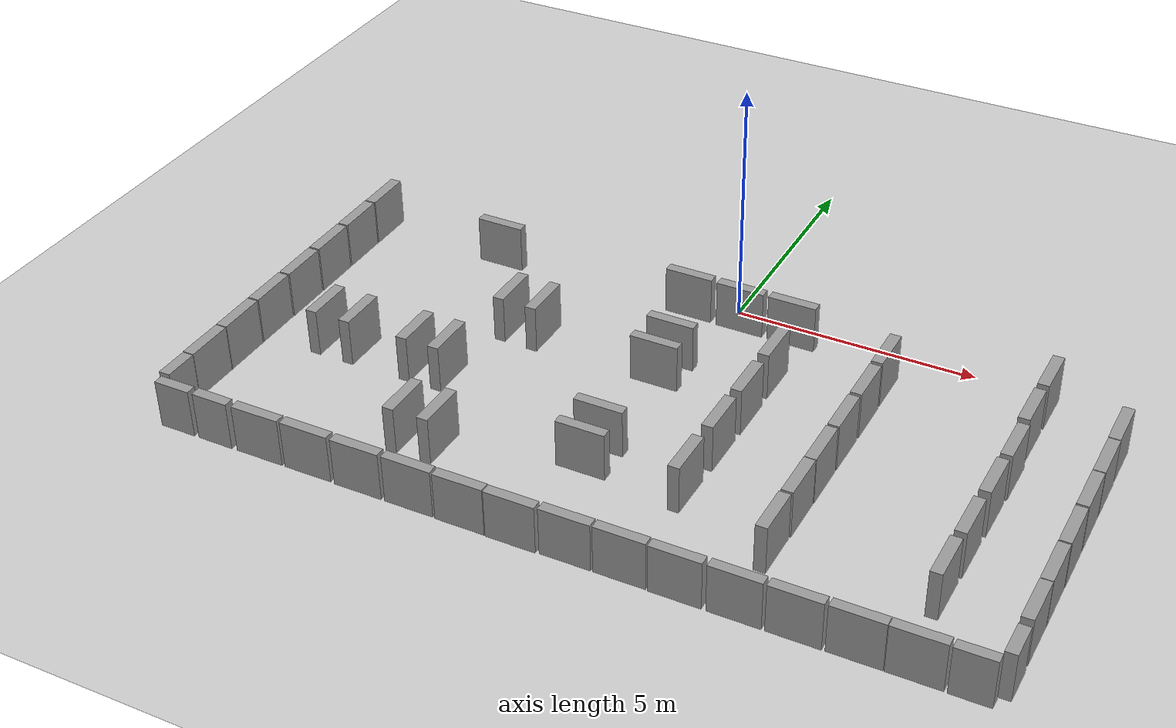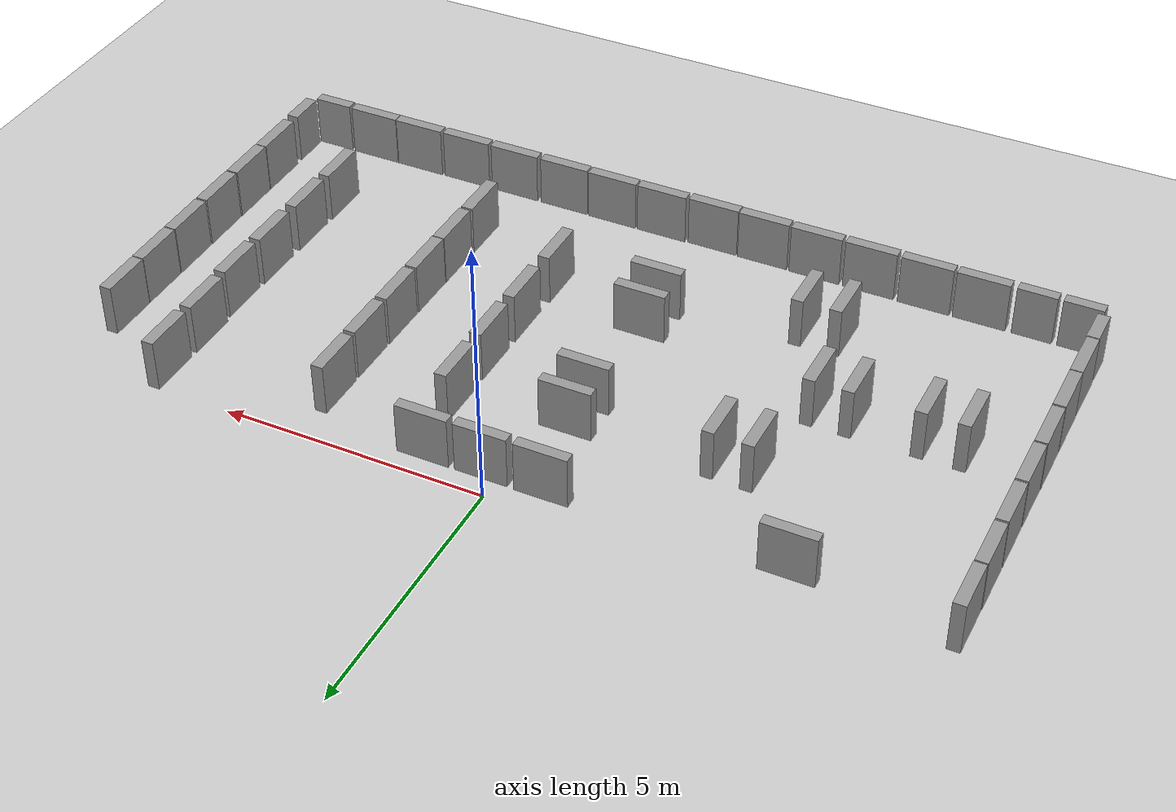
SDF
<sdf version="1.6">
 <world name="default">
  <model name="ground_plane">
   <static>1</static>
   <static>1</static>
   <link name="link">
    <collision name="collision">
     <geometry><plane><normal>0 0 1</normal><size>100 100</size></plane></geometry>
     <surface><friction><ode><mu>100</mu><mu2>50</mu2></ode></friction></surface>
    </collision>
    <visual name="visual">
     <cast_shadows>0</cast_shadows>
     <geometry><plane><normal>0 0 1</normal><size>100 100</size></plane></geometry>
     <material>
      <script><uri>file://media/materials/scripts/gazebo.material</uri><name>Gazebo/Grey</name></script>
     </material>
    </visual>
   </link>
  </model>
  <model name="unit_box_0_clone_8">
   <pose>8.11912 -1.4863 0.5 1e-06 1e-06 0.000127</pose>
   <link name="link">
    <inertial>
     <mass>1</mass>
     <inertia>
      <ixx>0.166667</ixx>
      <ixy>0</ixy>
      <ixz>0</ixz>
      <iyy>0.166667</iyy>
      <iyz>0</iyz>
      <izz>0.166667</izz>
     </inertia>
    </inertial>
    <collision name="collision"><geometry><box><size>0.230819 1 1</size></box></geometry></collision>
    <visual name="visual">
     <geometry><box><size>0.230819 1 1</size></box></geometry>
     <material>
      <script><name>Gazebo/Grey</name><uri>file://media/materials/scripts/gazebo.material</uri></script>
     </material>
    </visual>
   </link>
  </model>
  <model name="unit_box_0_clone_9">
   <pose>8.12548 -2.5042 0.5 1e-06 1e-06 0.000127</pose>
   <link name="link">
    <inertial>
     <mass>1</mass>
     <inertia>
      <ixx>0.166667</ixx>
      <ixy>0</ixy>
      <ixz>0</ixz>
      <iyy>0.166667</iyy>
      <iyz>0</iyz>
      <izz>0.166667</izz>
     </inertia>
    </inertial>
    <collision name="collision"><geometry><box><size>0.230819 1 1</size></box></geometry></collision>
    <visual name="visual">
     <geometry><box><size>0.230819 1 1</size></box></geometry>
     <material>
      <script><name>Gazebo/Grey</name><uri>file://media/materials/scripts/gazebo.material</uri></script>
     </material>
    </visual>
   </link>
  </model>
  <model name="unit_box_0_clone_10">
   <pose>8.12331 -3.52222 0.5 1e-06 1e-06 0.000127</pose>
   <link name="link">
    <inertial>
     <mass>1</mass>
     <inertia>
      <ixx>0.166667</ixx>
      <ixy>0</ixy>
      <ixz>0</ixz>
      <iyy>0.166667</iyy>
      <iyz>0</iyz>
      <izz>0.166667</izz>
     </inertia>
    </inertial>
    <collision name="collision"><geometry><box><size>0.230819 1 1</size></box></geometry></collision>
    <visual name="visual">
     <geometry><box><size>0.230819 1 1</size></box></geometry>
     <material>
      <script><name>Gazebo/Grey</name><uri>file://media/materials/scripts/gazebo.material</uri></script>
     </material>
    </visual>
   </link>
  </model>
  <model name="unit_box_0_clone_11">
   <pose>8.1233 -4.56315 0.5 1e-06 1e-06 0.000127</pose>
   <link name="link">
    <inertial>
     <mass>1</mass>
     <inertia>
      <ixx>0.166667</ixx>
      <ixy>0</ixy>
      <ixz>0</ixz>
      <iyy>0.166667</iyy>
      <iyz>0</iyz>
      <izz>0.166667</izz>
     </inertia>
    </inertial>
    <collision name="collision"><geometry><box><size>0.230819 1 1</size></box></geometry></collision>
    <visual name="visual">
     <geometry><box><size>0.230819 1 1</size></box></geometry>
     <material>
      <script><name>Gazebo/Grey</name><uri>file://media/materials/scripts/gazebo.material</uri></script>
     </material>
    </visual>
   </link>
  </model>
  <model name="unit_box_0_clone_12">
   <pose>8.11815 -5.59377 0.5 1e-06 1e-06 0.000127</pose>
   <link name="link">
    <inertial>
     <mass>1</mass>
     <inertia>
      <ixx>0.166667</ixx>
      <ixy>0</ixy>
      <ixz>0</ixz>
      <iyy>0.166667</iyy>
      <iyz>0</iyz>
      <izz>0.166667</izz>
     </inertia>
    </inertial>
    <collision name="collision"><geometry><box><size>0.230819 1 1</size></box></geometry></collision>
    <visual name="visual">
     <geometry><box><size>0.230819 1 1</size></box></geometry>
     <material>
      <script><name>Gazebo/Grey</name><uri>file://media/materials/scripts/gazebo.material</uri></script>
     </material>
    </visual>
   </link>
  </model>
  <model name="unit_box_0_clone_13">
   <pose>8.11333 -6.60776 0.5 1e-06 1e-06 -0.00535</pose>
   <link name="link">
    <inertial>
     <mass>1</mass>
     <inertia>
      <ixx>0.166667</ixx>
      <ixy>0</ixy>
      <ixz>0</ixz>
      <iyy>0.166667</iyy>
      <iyz>0</iyz>
      <izz>0.166667</izz>
     </inertia>
    </inertial>
    <collision name="collision"><geometry><box><size>0.230819 1 1</size></box></geometry></collision>
    <visual name="visual">
     <geometry><box><size>0.230819 1 1</size></box></geometry>
     <material>
      <script><name>Gazebo/Grey</name><uri>file://media/materials/scripts/gazebo.material</uri></script>
     </material>
    </visual>
   </link>
  </model>
  <model name="unit_box_clone_15_clone_0">
   <pose>6.71207 -8.13103 0.5 0 -0 0.000368</pose>
   <link name="link">
    <inertial>
     <mass>1</mass>
     <inertia>
      <ixx>0.166667</ixx>
      <ixy>0</ixy>
      <ixz>0</ixz>
      <iyy>0.166667</iyy>
      <iyz>0</iyz>
      <izz>0.166667</izz>
     </inertia>
    </inertial>
    <collision name="collision"><geometry><box><size>1 0.210541 1</size></box></geometry></collision>
    <visual name="visual">
     <geometry><box><size>1 0.210541 1</size></box></geometry>
     <material>
      <script><name>Gazebo/Grey</name><uri>file://media/materials/scripts/gazebo.material</uri></script>
     </material>
    </visual>
   </link>
  </model>
  <model name="unit_box_clone_15_clone_1">
   <pose>5.69715 -8.13103 0.5 0 -0 0.000368</pose>
   <link name="link">
    <inertial>
     <mass>1</mass>
     <inertia>
      <ixx>0.166667</ixx>
      <ixy>0</ixy>
      <ixz>0</ixz>
      <iyy>0.166667</iyy>
      <iyz>0</iyz>
      <izz>0.166667</izz>
     </inertia>
    </inertial>
    <collision name="collision"><geometry><box><size>1 0.210541 1</size></box></geometry></collision>
    <visual name="visual">
     <geometry><box><size>1 0.210541 1</size></box></geometry>
     <material>
      <script><name>Gazebo/Grey</name><uri>file://media/materials/scripts/gazebo.material</uri></script>
     </material>
    </visual>
   </link>
  </model>
  <model name="unit_box_clone_15_clone_2">
   <pose>4.63881 -8.13721 0.5 0 -0 0.000368</pose>
   <link name="link">
    <inertial>
     <mass>1</mass>
     <inertia>
      <ixx>0.166667</ixx>
      <ixy>0</ixy>
      <ixz>0</ixz>
      <iyy>0.166667</iyy>
      <iyz>0</iyz>
      <izz>0.166667</izz>
     </inertia>
    </inertial>
    <collision name="collision"><geometry><box><size>1 0.210541 1</size></box></geometry></collision>
    <visual name="visual">
     <geometry><box><size>1 0.210541 1</size></box></geometry>
     <material>
      <script><name>Gazebo/Grey</name><uri>file://media/materials/scripts/gazebo.material</uri></script>
     </material>
    </visual>
   </link>
  </model>
  <model name="unit_box_clone_15_clone_3">
   <pose>3.57975 -8.13721 0.5 0 -0 0.000368</pose>
   <link name="link">
    <inertial>
     <mass>1</mass>
     <inertia>
      <ixx>0.166667</ixx>
      <ixy>0</ixy>
      <ixz>0</ixz>
      <iyy>0.166667</iyy>
      <iyz>0</iyz>
      <izz>0.166667</izz>
     </inertia>
    </inertial>
    <collision name="collision"><geometry><box><size>1 0.210541 1</size></box></geometry></collision>
    <visual name="visual">
     <geometry><box><size>1 0.210541 1</size></box></geometry>
     <material>
      <script><name>Gazebo/Grey</name><uri>file://media/materials/scripts/gazebo.material</uri></script>
     </material>
    </visual>
   </link>
  </model>
  <model name="unit_box_clone_15_clone_4">
   <pose>2.49815 -8.13719 0.5 0 -0 0.000368</pose>
   <link name="link">
    <inertial>
     <mass>1</mass>
     <inertia>
      <ixx>0.166667</ixx>
      <ixy>0</ixy>
      <ixz>0</ixz>
      <iyy>0.166667</iyy>
      <iyz>0</iyz>
      <izz>0.166667</izz>
     </inertia>
    </inertial>
    <collision name="collision"><geometry><box><size>1 0.210541 1</size></box></geometry></collision>
    <visual name="visual">
     <geometry><box><size>1 0.210541 1</size></box></geometry>
     <material>
      <script><name>Gazebo/Grey</name><uri>file://media/materials/scripts/gazebo.material</uri></script>
     </material>
    </visual>
   </link>
  </model>
  <model name="unit_box_clone_15_clone_5">
   <pose>1.46162 -8.12592 0.5 0 -0 0.000368</pose>
   <link name="link">
    <inertial>
     <mass>1</mass>
     <inertia>
      <ixx>0.166667</ixx>
      <ixy>0</ixy>
      <ixz>0</ixz>
      <iyy>0.166667</iyy>
      <iyz>0</iyz>
      <izz>0.166667</izz>
     </inertia>
    </inertial>
    <collision name="collision"><geometry><box><size>1 0.210541 1</size></box></geometry></collision>
    <visual name="visual">
     <geometry><box><size>1 0.210541 1</size></box></geometry>
     <material>
      <script><name>Gazebo/Grey</name><uri>file://media/materials/scripts/gazebo.material</uri></script>
     </material>
    </visual>
   </link>
  </model>
  <model name="unit_box_clone_15_clone_6">
   <pose>0.425094 -8.12592 0.5 0 -0 0.000368</pose>
   <link name="link">
    <inertial>
     <mass>1</mass>
     <inertia>
      <ixx>0.166667</ixx>
      <ixy>0</ixy>
      <ixz>0</ixz>
      <iyy>0.166667</iyy>
      <iyz>0</iyz>
      <izz>0.166667</izz>
     </inertia>
    </inertial>
    <collision name="collision"><geometry><box><size>1 0.210541 1</size></box></geometry></collision>
    <visual name="visual">
     <geometry><box><size>1 0.210541 1</size></box></geometry>
     <material>
      <script><name>Gazebo/Grey</name><uri>file://media/materials/scripts/gazebo.material</uri></script>
     </material>
    </visual>
   </link>
  </model>
  <model name="unit_box_clone_15_clone_7">
   <pose>-0.633968 -8.14847 0.5 0 -0 0.000368</pose>
   <link name="link">
    <inertial>
     <mass>1</mass>
     <inertia>
      <ixx>0.166667</ixx>
      <ixy>0</ixy>
      <ixz>0</ixz>
      <iyy>0.166667</iyy>
      <iyz>0</iyz>
      <izz>0.166667</izz>
     </inertia>
    </inertial>
    <collision name="collision"><geometry><box><size>1 0.210541 1</size></box></geometry></collision>
    <visual name="visual">
     <geometry><box><size>1 0.210541 1</size></box></geometry>
     <material>
      <script><name>Gazebo/Grey</name><uri>file://media/materials/scripts/gazebo.material</uri></script>
     </material>
    </visual>
   </link>
  </model>
  <model name="unit_box_clone_15_clone_8">
   <pose>-1.65923 -8.13718 0.5 0 -0 0.000368</pose>
   <link name="link">
    <inertial>
     <mass>1</mass>
     <inertia>
      <ixx>0.166667</ixx>
      <ixy>0</ixy>
      <ixz>0</ixz>
      <iyy>0.166667</iyy>
      <iyz>0</iyz>
      <izz>0.166667</izz>
     </inertia>
    </inertial>
    <collision name="collision"><geometry><box><size>1 0.210541 1</size></box></geometry></collision>
    <visual name="visual">
     <geometry><box><size>1 0.210541 1</size></box></geometry>
     <material>
      <script><name>Gazebo/Grey</name><uri>file://media/materials/scripts/gazebo.material</uri></script>
     </material>
    </visual>
   </link>
  </model>
  <model name="unit_box_clone_15_clone_9">
   <pose>-2.70703 -8.12593 0.5 0 -0 0.000368</pose>
   <link name="link">
    <inertial>
     <mass>1</mass>
     <inertia>
      <ixx>0.166667</ixx>
      <ixy>0</ixy>
      <ixz>0</ixz>
      <iyy>0.166667</iyy>
      <iyz>0</iyz>
      <izz>0.166667</izz>
     </inertia>
    </inertial>
    <collision name="collision"><geometry><box><size>1 0.210541 1</size></box></geometry></collision>
    <visual name="visual">
     <geometry><box><size>1 0.210541 1</size></box></geometry>
     <material>
      <script><name>Gazebo/Grey</name><uri>file://media/materials/scripts/gazebo.material</uri></script>
     </material>
    </visual>
   </link>
  </model>
  <model name="unit_box_clone_15_clone_10">
   <pose>-3.77736 -8.12592 0.5 0 -0 0.000368</pose>
   <link name="link">
    <inertial>
     <mass>1</mass>
     <inertia>
      <ixx>0.166667</ixx>
      <ixy>0</ixy>
      <ixz>0</ixz>
      <iyy>0.166667</iyy>
      <iyz>0</iyz>
      <izz>0.166667</izz>
     </inertia>
    </inertial>
    <collision name="collision"><geometry><box><size>1 0.210541 1</size></box></geometry></collision>
    <visual name="visual">
     <geometry><box><size>1 0.210541 1</size></box></geometry>
     <material>
      <script><name>Gazebo/Grey</name><uri>file://media/materials/scripts/gazebo.material</uri></script>
     </material>
    </visual>
   </link>
  </model>
  <model name="unit_box_clone_15_clone_11">
   <pose>-4.85896 -8.11466 0.5 0 -0 0.000368</pose>
   <link name="link">
    <inertial>
     <mass>1</mass>
     <inertia>
      <ixx>0.166667</ixx>
      <ixy>0</ixy>
      <ixz>0</ixz>
      <iyy>0.166667</iyy>
      <iyz>0</iyz>
      <izz>0.166667</izz>
     </inertia>
    </inertial>
    <collision name="collision"><geometry><box><size>1 0.210541 1</size></box></geometry></collision>
    <visual name="visual">
     <geometry><box><size>1 0.210541 1</size></box></geometry>
     <material>
      <script><name>Gazebo/Grey</name><uri>file://media/materials/scripts/gazebo.material</uri></script>
     </material>
    </visual>
   </link>
  </model>
  <model name="unit_box_clone_15_clone_12">
   <pose>-5.91802 -8.11466 0.5 0 -0 0.000368</pose>
   <link name="link">
    <inertial>
     <mass>1</mass>
     <inertia>
      <ixx>0.166667</ixx>
      <ixy>0</ixy>
      <ixz>0</ixz>
      <iyy>0.166667</iyy>
      <iyz>0</iyz>
      <izz>0.166667</izz>
     </inertia>
    </inertial>
    <collision name="collision"><geometry><box><size>1 0.210541 1</size></box></geometry></collision>
    <visual name="visual">
     <geometry><box><size>1 0.210541 1</size></box></geometry>
     <material>
      <script><name>Gazebo/Grey</name><uri>file://media/materials/scripts/gazebo.material</uri></script>
     </material>
    </visual>
   </link>
  </model>
  <model name="unit_box_0_clone_4_clone_7">
   <pose>-8.12609 -0.518038 0.5 1e-06 1e-06 0.000127</pose>
   <link name="link">
    <inertial>
     <mass>1</mass>
     <inertia>
      <ixx>0.166667</ixx>
      <ixy>0</ixy>
      <ixz>0</ixz>
      <iyy>0.166667</iyy>
      <iyz>0</iyz>
      <izz>0.166667</izz>
     </inertia>
    </inertial>
    <collision name="collision"><geometry><box><size>0.230819 1 1</size></box></geometry></collision>
    <visual name="visual">
     <geometry><box><size>0.230819 1 1</size></box></geometry>
     <material>
      <script><name>Gazebo/Grey</name><uri>file://media/materials/scripts/gazebo.material</uri></script>
     </material>
    </visual>
   </link>
  </model>
  <model name="unit_box_0_clone_4_clone_8">
   <pose>-8.13284 -1.54445 0.5 1e-06 1e-06 0.000127</pose>
   <link name="link">
    <inertial>
     <mass>1</mass>
     <inertia>
      <ixx>0.166667</ixx>
      <ixy>0</ixy>
      <ixz>0</ixz>
      <iyy>0.166667</iyy>
      <iyz>0</iyz>
      <izz>0.166667</izz>
     </inertia>
    </inertial>
    <collision name="collision"><geometry><box><size>0.230819 1 1</size></box></geometry></collision>
    <visual name="visual">
     <geometry><box><size>0.230819 1 1</size></box></geometry>
     <material>
      <script><name>Gazebo/Grey</name><uri>file://media/materials/scripts/gazebo.material</uri></script>
     </material>
    </visual>
   </link>
  </model>
  <model name="unit_box_0_clone_4_clone_9">
   <pose>-8.13285 -2.58437 0.5 1e-06 1e-06 0.000127</pose>
   <link name="link">
    <inertial>
     <mass>1</mass>
     <inertia>
      <ixx>0.166667</ixx>
      <ixy>0</ixy>
      <ixz>0</ixz>
      <iyy>0.166667</iyy>
      <iyz>0</iyz>
      <izz>0.166667</izz>
     </inertia>
    </inertial>
    <collision name="collision"><geometry><box><size>0.230819 1 1</size></box></geometry></collision>
    <visual name="visual">
     <geometry><box><size>0.230819 1 1</size></box></geometry>
     <material>
      <script><name>Gazebo/Grey</name><uri>file://media/materials/scripts/gazebo.material</uri></script>
     </material>
    </visual>
   </link>
  </model>
  <model name="unit_box_0_clone_4_clone_10">
   <pose>-8.13285 -3.62429 0.5 1e-06 1e-06 0.000127</pose>
   <link name="link">
    <inertial>
     <mass>1</mass>
     <inertia>
      <ixx>0.166667</ixx>
      <ixy>0</ixy>
      <ixz>0</ixz>
      <iyy>0.166667</iyy>
      <iyz>0</iyz>
      <izz>0.166667</izz>
     </inertia>
    </inertial>
    <collision name="collision"><geometry><box><size>0.230819 1 1</size></box></geometry></collision>
    <visual name="visual">
     <geometry><box><size>0.230819 1 1</size></box></geometry>
     <material>
      <script><name>Gazebo/Grey</name><uri>file://media/materials/scripts/gazebo.material</uri></script>
     </material>
    </visual>
   </link>
  </model>
  <model name="unit_box_0_clone_4_clone_11">
   <pose>-8.1396 -4.65746 0.5 1e-06 1e-06 0.000127</pose>
   <link name="link">
    <inertial>
     <mass>1</mass>
     <inertia>
      <ixx>0.166667</ixx>
      <ixy>0</ixy>
      <ixz>0</ixz>
      <iyy>0.166667</iyy>
      <iyz>0</iyz>
      <izz>0.166667</izz>
     </inertia>
    </inertial>
    <collision name="collision"><geometry><box><size>0.230819 1 1</size></box></geometry></collision>
    <visual name="visual">
     <geometry><box><size>0.230819 1 1</size></box></geometry>
     <material>
      <script><name>Gazebo/Grey</name><uri>file://media/materials/scripts/gazebo.material</uri></script>
     </material>
    </visual>
   </link>
  </model>
  <model name="unit_box_0_clone_4_clone_12">
   <pose>-8.1396 -5.69063 0.5 1e-06 1e-06 0.000127</pose>
   <link name="link">
    <inertial>
     <mass>1</mass>
     <inertia>
      <ixx>0.166667</ixx>
      <ixy>0</ixy>
      <ixz>0</ixz>
      <iyy>0.166667</iyy>
      <iyz>0</iyz>
      <izz>0.166667</izz>
     </inertia>
    </inertial>
    <collision name="collision"><geometry><box><size>0.230819 1 1</size></box></geometry></collision>
    <visual name="visual">
     <geometry><box><size>0.230819 1 1</size></box></geometry>
     <material>
      <script><name>Gazebo/Grey</name><uri>file://media/materials/scripts/gazebo.material</uri></script>
     </material>
    </visual>
   </link>
  </model>
  <model name="unit_box_0_clone_4_clone_13">
   <pose>-8.14113 -6.70873 0.499998 4e-06 0 -0.008675</pose>
   <link name="link">
    <inertial>
     <mass>1</mass>
     <inertia>
      <ixx>0.166667</ixx>
      <ixy>0</ixy>
      <ixz>0</ixz>
      <iyy>0.166667</iyy>
      <iyz>0</iyz>
      <izz>0.166667</izz>
     </inertia>
    </inertial>
    <collision name="collision"><geometry><box><size>0.230819 1 1</size></box></geometry></collision>
    <visual name="visual">
     <geometry><box><size>0.230819 1 1</size></box></geometry>
     <material>
      <script><name>Gazebo/Grey</name><uri>file://media/materials/scripts/gazebo.material</uri></script>
     </material>
    </visual>
   </link>
  </model>
  <model name="unit_box_clone_11_clone_1_clone_0">
   <pose>-6.9088 -8.11956 0.499997 -2e-06 8e-06 -0.007145</pose>
   <link name="link">
    <inertial>
     <mass>1</mass>
     <inertia>
      <ixx>0.166667</ixx>
      <ixy>0</ixy>
      <ixz>0</ixz>
      <iyy>0.166667</iyy>
      <iyz>0</iyz>
      <izz>0.166667</izz>
     </inertia>
    </inertial>
    <collision name="collision"><geometry><box><size>0.750223 0.210541 1</size></box></geometry></collision>
    <visual name="visual">
     <geometry><box><size>0.750223 0.210541 1</size></box></geometry>
     <material>
      <script><name>Gazebo/Grey</name><uri>file://media/materials/scripts/gazebo.material</uri></script>
     </material>
    </visual>
   </link>
  </model>
  <model name="unit_box_0_clone_4_clone_13_clone_clone">
   <pose>-8.13833 -7.5766 0.499998 -6e-06 2e-06 -0.013533</pose>
   <link name="link">
    <inertial>
     <mass>1</mass>
     <inertia>
      <ixx>0.166667</ixx>
      <ixy>0</ixy>
      <ixz>0</ixz>
      <iyy>0.166667</iyy>
      <iyz>0</iyz>
      <izz>0.166667</izz>
     </inertia>
    </inertial>
    <collision name="collision"><geometry><box><size>0.230819 0.700336 1</size></box></geometry></collision>
    <visual name="visual">
     <geometry><box><size>0.230819 0.700336 1</size></box></geometry>
     <material>
      <script><name>Gazebo/Grey</name><uri>file://media/materials/scripts/gazebo.material</uri></script>
     </material>
    </visual>
   </link>
  </model>
  <model name="unit_box_clone_11_clone_1_clone_0_clone">
   <pose>-7.75476 -8.122 0.5 0 1e-06 -0.001913</pose>
   <link name="link">
    <inertial>
     <mass>1</mass>
     <inertia>
      <ixx>0.166667</ixx>
      <ixy>0</ixy>
      <ixz>0</ixz>
      <iyy>0.166667</iyy>
      <iyz>0</iyz>
      <izz>0.166667</izz>
     </inertia>
    </inertial>
    <collision name="collision"><geometry><box><size>0.750223 0.210541 1</size></box></geometry></collision>
    <visual name="visual">
     <geometry><box><size>0.750223 0.210541 1</size></box></geometry>
     <material>
      <script><name>Gazebo/Grey</name><uri>file://media/materials/scripts/gazebo.material</uri></script>
     </material>
    </visual>
   </link>
  </model>
  <model name="unit_box_clone_11_clone_1_clone_2">
   <pose>7.6425 -8.13929 0.500001 0 -1e-06 0.003846</pose>
   <link name="link">
    <inertial>
     <mass>1</mass>
     <inertia>
      <ixx>0.166667</ixx>
      <ixy>0</ixy>
      <ixz>0</ixz>
      <iyy>0.166667</iyy>
      <iyz>0</iyz>
      <izz>0.166667</izz>
     </inertia>
    </inertial>
    <collision name="collision"><geometry><box><size>0.750223 0.210541 1</size></box></geometry></collision>
    <visual name="visual">
     <geometry><box><size>0.750223 0.210541 1</size></box></geometry>
     <material>
      <script><name>Gazebo/Grey</name><uri>file://media/materials/scripts/gazebo.material</uri></script>
     </material>
    </visual>
   </link>
  </model>
  <model name="unit_box_0_clone_4_clone_13_clone_clone_clone">
   <pose>8.11858 -7.62155 0.499997 7e-06 3e-06 -0.007198</pose>
   <link name="link">
    <inertial>
     <mass>1</mass>
     <inertia>
      <ixx>0.166667</ixx>
      <ixy>0</ixy>
      <ixz>0</ixz>
      <iyy>0.166667</iyy>
      <iyz>0</iyz>
      <izz>0.166667</izz>
     </inertia>
    </inertial>
    <collision name="collision"><geometry><box><size>0.230819 0.700336 1</size></box></geometry></collision>
    <visual name="visual">
     <geometry><box><size>0.230819 0.700336 1</size></box></geometry>
     <material>
      <script><name>Gazebo/Grey</name><uri>file://media/materials/scripts/gazebo.material</uri></script>
     </material>
    </visual>
   </link>
  </model>
  <model name="unit_box_0_clone_13_clone_4">
   <pose>6.53012 -0.497923 0.499998 4e-06 -0 -0.005253</pose>
   <link name="link">
    <inertial>
     <mass>1</mass>
     <inertia>
      <ixx>0.166667</ixx>
      <ixy>0</ixy>
      <ixz>0</ixz>
      <iyy>0.166667</iyy>
      <iyz>0</iyz>
      <izz>0.166667</izz>
     </inertia>
    </inertial>
    <collision name="collision"><geometry><box><size>0.230819 1 1</size></box></geometry></collision>
    <visual name="visual">
     <geometry><box><size>0.230819 1 1</size></box></geometry>
     <material>
      <script><name>Gazebo/Grey</name><uri>file://media/materials/scripts/gazebo.material</uri></script>
     </material>
    </visual>
   </link>
  </model>
  <model name="unit_box_0_clone_13_clone_5">
   <pose>6.51681 -1.6422 0.499998 -4e-06 0 -0.005533</pose>
   <link name="link">
    <inertial>
     <mass>1</mass>
     <inertia>
      <ixx>0.166667</ixx>
      <ixy>0</ixy>
      <ixz>0</ixz>
      <iyy>0.166667</iyy>
      <iyz>0</iyz>
      <izz>0.166667</izz>
     </inertia>
    </inertial>
    <collision name="collision"><geometry><box><size>0.230819 1 1</size></box></geometry></collision>
    <visual name="visual">
     <geometry><box><size>0.230819 1 1</size></box></geometry>
     <material>
      <script><name>Gazebo/Grey</name><uri>file://media/materials/scripts/gazebo.material</uri></script>
     </material>
    </visual>
   </link>
  </model>
  <model name="unit_box_0_clone_13_clone_6">
   <pose>6.55672 -2.78647 0.499998 4e-06 -0 -0.005215</pose>
   <link name="link">
    <inertial>
     <mass>1</mass>
     <inertia>
      <ixx>0.166667</ixx>
      <ixy>0</ixy>
      <ixz>0</ixz>
      <iyy>0.166667</iyy>
      <iyz>0</iyz>
      <izz>0.166667</izz>
     </inertia>
    </inertial>
    <collision name="collision"><geometry><box><size>0.230819 1 1</size></box></geometry></collision>
    <visual name="visual">
     <geometry><box><size>0.230819 1 1</size></box></geometry>
     <material>
      <script><name>Gazebo/Grey</name><uri>file://media/materials/scripts/gazebo.material</uri></script>
     </material>
    </visual>
   </link>
  </model>
  <model name="unit_box_0_clone_13_clone_7">
   <pose>6.5301 -3.90414 0.5 -1e-06 -1e-06 -0.005422</pose>
   <link name="link">
    <inertial>
     <mass>1</mass>
     <inertia>
      <ixx>0.166667</ixx>
      <ixy>0</ixy>
      <ixz>0</ixz>
      <iyy>0.166667</iyy>
      <iyz>0</iyz>
      <izz>0.166667</izz>
     </inertia>
    </inertial>
    <collision name="collision"><geometry><box><size>0.230819 1 1</size></box></geometry></collision>
    <visual name="visual">
     <geometry><box><size>0.230819 1 1</size></box></geometry>
     <material>
      <script><name>Gazebo/Grey</name><uri>file://media/materials/scripts/gazebo.material</uri></script>
     </material>
    </visual>
   </link>
  </model>
  <model name="unit_box_0_clone_13_clone_8">
   <pose>6.50349 -5.10163 0.499998 4e-06 -0 -0.005233</pose>
   <link name="link">
    <inertial>
     <mass>1</mass>
     <inertia>
      <ixx>0.166667</ixx>
      <ixy>0</ixy>
      <ixz>0</ixz>
      <iyy>0.166667</iyy>
      <iyz>0</iyz>
      <izz>0.166667</izz>
     </inertia>
    </inertial>
    <collision name="collision"><geometry><box><size>0.230819 1 1</size></box></geometry></collision>
    <visual name="visual">
     <geometry><box><size>0.230819 1 1</size></box></geometry>
     <material>
      <script><name>Gazebo/Grey</name><uri>file://media/materials/scripts/gazebo.material</uri></script>
     </material>
    </visual>
   </link>
  </model>
  <model name="unit_box_0_clone_13_clone_9">
   <pose>6.47687 -6.24591 0.5 1e-06 -1e-06 -0.005492</pose>
   <link name="link">
    <inertial>
     <mass>1</mass>
     <inertia>
      <ixx>0.166667</ixx>
      <ixy>0</ixy>
      <ixz>0</ixz>
      <iyy>0.166667</iyy>
      <iyz>0</iyz>
      <izz>0.166667</izz>
     </inertia>
    </inertial>
    <collision name="collision"><geometry><box><size>0.230819 1 1</size></box></geometry></collision>
    <visual name="visual">
     <geometry><box><size>0.230819 1 1</size></box></geometry>
     <material>
      <script><name>Gazebo/Grey</name><uri>file://media/materials/scripts/gazebo.material</uri></script>
     </material>
    </visual>
   </link>
  </model>
  <model name="unit_box_0_clone_13_clone_2_clone_2">
   <pose>3.54618 -1.20077 0.499998 4e-06 -0 -0.005346</pose>
   <link name="link">
    <inertial>
     <mass>1</mass>
     <inertia>
      <ixx>0.166667</ixx>
      <ixy>0</ixy>
      <ixz>0</ixz>
      <iyy>0.166667</iyy>
      <iyz>0</iyz>
      <izz>0.166667</izz>
     </inertia>
    </inertial>
    <collision name="collision"><geometry><box><size>0.230819 1 1</size></box></geometry></collision>
    <visual name="visual">
     <geometry><box><size>0.230819 1 1</size></box></geometry>
     <material>
      <script><name>Gazebo/Grey</name><uri>file://media/materials/scripts/gazebo.material</uri></script>
     </material>
    </visual>
   </link>
  </model>
  <model name="unit_box_0_clone_13_clone_2_clone_3">
   <pose>3.54617 -2.28309 0.5 -1e-06 1e-06 -0.00553</pose>
   <link name="link">
    <inertial>
     <mass>1</mass>
     <inertia>
      <ixx>0.166667</ixx>
      <ixy>0</ixy>
      <ixz>0</ixz>
      <iyy>0.166667</iyy>
      <iyz>0</iyz>
      <izz>0.166667</izz>
     </inertia>
    </inertial>
    <collision name="collision"><geometry><box><size>0.230819 1 1</size></box></geometry></collision>
    <visual name="visual">
     <geometry><box><size>0.230819 1 1</size></box></geometry>
     <material>
      <script><name>Gazebo/Grey</name><uri>file://media/materials/scripts/gazebo.material</uri></script>
     </material>
    </visual>
   </link>
  </model>
  <model name="unit_box_0_clone_13_clone_2_clone_4">
   <pose>3.53489 -3.35414 0.499998 -4e-06 -0 -0.005283</pose>
   <link name="link">
    <inertial>
     <mass>1</mass>
     <inertia>
      <ixx>0.166667</ixx>
      <ixy>0</ixy>
      <ixz>0</ixz>
      <iyy>0.166667</iyy>
      <iyz>0</iyz>
      <izz>0.166667</izz>
     </inertia>
    </inertial>
    <collision name="collision"><geometry><box><size>0.230819 1 1</size></box></geometry></collision>
    <visual name="visual">
     <geometry><box><size>0.230819 1 1</size></box></geometry>
     <material>
      <script><name>Gazebo/Grey</name><uri>file://media/materials/scripts/gazebo.material</uri></script>
     </material>
    </visual>
   </link>
  </model>
  <model name="unit_box_0_clone_13_clone_2_clone_5">
   <pose>3.52361 -4.40264 0.499998 4e-06 -0 -0.005517</pose>
   <link name="link">
    <inertial>
     <mass>1</mass>
     <inertia>
      <ixx>0.166667</ixx>
      <ixy>0</ixy>
      <ixz>0</ixz>
      <iyy>0.166667</iyy>
      <iyz>0</iyz>
      <izz>0.166667</izz>
     </inertia>
    </inertial>
    <collision name="collision"><geometry><box><size>0.230819 1 1</size></box></geometry></collision>
    <visual name="visual">
     <geometry><box><size>0.230819 1 1</size></box></geometry>
     <material>
      <script><name>Gazebo/Grey</name><uri>file://media/materials/scripts/gazebo.material</uri></script>
     </material>
    </visual>
   </link>
  </model>
  <model name="unit_box_0_clone_13_clone_2_clone_6">
   <pose>3.51233 -5.41732 0.499998 -4e-06 -0 -0.005345</pose>
   <link name="link">
    <inertial>
     <mass>1</mass>
     <inertia>
      <ixx>0.166667</ixx>
      <ixy>0</ixy>
      <ixz>0</ixz>
      <iyy>0.166667</iyy>
      <iyz>0</iyz>
      <izz>0.166667</izz>
     </inertia>
    </inertial>
    <collision name="collision"><geometry><box><size>0.230819 1 1</size></box></geometry></collision>
    <visual name="visual">
     <geometry><box><size>0.230819 1 1</size></box></geometry>
     <material>
      <script><name>Gazebo/Grey</name><uri>file://media/materials/scripts/gazebo.material</uri></script>
     </material>
    </visual>
   </link>
  </model>
  <model name="unit_box_0_clone_13_clone_2_clone_7">
   <pose>3.48978 -6.46582 0.499998 4e-06 0 -0.005363</pose>
   <link name="link">
    <inertial>
     <mass>1</mass>
     <inertia>
      <ixx>0.166667</ixx>
      <ixy>0</ixy>
      <ixz>0</ixz>
      <iyy>0.166667</iyy>
      <iyz>0</iyz>
      <izz>0.166667</izz>
     </inertia>
    </inertial>
    <collision name="collision"><geometry><box><size>0.230819 1 1</size></box></geometry></collision>
    <visual name="visual">
     <geometry><box><size>0.230819 1 1</size></box></geometry>
     <material>
      <script><name>Gazebo/Grey</name><uri>file://media/materials/scripts/gazebo.material</uri></script>
     </material>
    </visual>
   </link>
  </model>
  <model name="unit_box_clone_11_clone_clone_9_clone_clone">
   <pose>-5.22303 -0.48593 0.5 0 0 -0.003293</pose>
   <link name="link">
    <inertial>
     <mass>1</mass>
     <inertia>
      <ixx>0.166667</ixx>
      <ixy>0</ixy>
      <ixz>0</ixz>
      <iyy>0.166667</iyy>
      <iyz>0</iyz>
      <izz>0.166667</izz>
     </inertia>
    </inertial>
    <collision name="collision"><geometry><box><size>1 0.210541 1</size></box></geometry></collision>
    <visual name="visual">
     <geometry><box><size>1 0.210541 1</size></box></geometry>
     <material>
      <script><name>Gazebo/Grey</name><uri>file://media/materials/scripts/gazebo.material</uri></script>
     </material>
    </visual>
   </link>
  </model>
  <model name="unit_box_clone_11_clone_clone_9_clone_clone_1">
   <pose>-0.880986 -0.46885 0.5 0 0 -0.00326</pose>
   <link name="link">
    <inertial>
     <mass>1</mass>
     <inertia>
      <ixx>0.166667</ixx>
      <ixy>0</ixy>
      <ixz>0</ixz>
      <iyy>0.166667</iyy>
      <iyz>0</iyz>
      <izz>0.166667</izz>
     </inertia>
    </inertial>
    <collision name="collision"><geometry><box><size>1 0.210541 1</size></box></geometry></collision>
    <visual name="visual">
     <geometry><box><size>1 0.210541 1</size></box></geometry>
     <material>
      <script><name>Gazebo/Grey</name><uri>file://media/materials/scripts/gazebo.material</uri></script>
     </material>
    </visual>
   </link>
  </model>
  <model name="unit_box_clone_11_clone_clone_9_clone_clone_2">
   <pose>0.247261 -0.486065 0.5 0 0 -0.003162</pose>
   <link name="link">
    <inertial>
     <mass>1</mass>
     <inertia>
      <ixx>0.166667</ixx>
      <ixy>0</ixy>
      <ixz>0</ixz>
      <iyy>0.166667</iyy>
      <iyz>0</iyz>
      <izz>0.166667</izz>
     </inertia>
    </inertial>
    <collision name="collision"><geometry><box><size>1 0.210541 1</size></box></geometry></collision>
    <visual name="visual">
     <geometry><box><size>1 0.210541 1</size></box></geometry>
     <material>
      <script><name>Gazebo/Grey</name><uri>file://media/materials/scripts/gazebo.material</uri></script>
     </material>
    </visual>
   </link>
  </model>
  <model name="unit_box_clone_11_clone_clone_9_clone_clone_3">
   <pose>1.35841 -0.486084 0.5 -0 -0 -0.00323</pose>
   <link name="link">
    <inertial>
     <mass>1</mass>
     <inertia>
      <ixx>0.166667</ixx>
      <ixy>0</ixy>
      <ixz>0</ixz>
      <iyy>0.166667</iyy>
      <iyz>0</iyz>
      <izz>0.166667</izz>
     </inertia>
    </inertial>
    <collision name="collision"><geometry><box><size>1 0.210541 1</size></box></geometry></collision>
    <visual name="visual">
     <geometry><box><size>1 0.210541 1</size></box></geometry>
     <material>
      <script><name>Gazebo/Grey</name><uri>file://media/materials/scripts/gazebo.material</uri></script>
     </material>
    </visual>
   </link>
  </model>
  <model name="unit_box_0_clone_13_clone_2_clone_2_clone">
   <pose>1.54645 -1.92196 0.499996 -8e-06 -0 -0.005562</pose>
   <link name="link">
    <inertial>
     <mass>1</mass>
     <inertia>
      <ixx>0.166667</ixx>
      <ixy>0</ixy>
      <ixz>0</ixz>
      <iyy>0.166667</iyy>
      <iyz>0</iyz>
      <izz>0.166667</izz>
     </inertia>
    </inertial>
    <collision name="collision"><geometry><box><size>0.230819 1 1</size></box></geometry></collision>
    <visual name="visual">
     <geometry><box><size>0.230819 1 1</size></box></geometry>
     <material>
      <script><name>Gazebo/Grey</name><uri>file://media/materials/scripts/gazebo.material</uri></script>
     </material>
    </visual>
   </link>
  </model>
  <model name="unit_box_0_clone_13_clone_2_clone_2_clone_0">
   <pose>1.54644 -3.16988 0.499998 4e-06 -0 -0.005478</pose>
   <link name="link">
    <inertial>
     <mass>1</mass>
     <inertia>
      <ixx>0.166667</ixx>
      <ixy>0</ixy>
      <ixz>0</ixz>
      <iyy>0.166667</iyy>
      <iyz>0</iyz>
      <izz>0.166667</izz>
     </inertia>
    </inertial>
    <collision name="collision"><geometry><box><size>0.230819 1 1</size></box></geometry></collision>
    <visual name="visual">
     <geometry><box><size>0.230819 1 1</size></box></geometry>
     <material>
      <script><name>Gazebo/Grey</name><uri>file://media/materials/scripts/gazebo.material</uri></script>
     </material>
    </visual>
   </link>
  </model>
  <model name="unit_box_0_clone_13_clone_2_clone_2_clone_1">
   <pose>1.52934 -4.38359 0.5 1e-06 -1e-06 -0.005434</pose>
   <link name="link">
    <inertial>
     <mass>1</mass>
     <inertia>
      <ixx>0.166667</ixx>
      <ixy>0</ixy>
      <ixz>0</ixz>
      <iyy>0.166667</iyy>
      <iyz>0</iyz>
      <izz>0.166667</izz>
     </inertia>
    </inertial>
    <collision name="collision"><geometry><box><size>0.230819 1 1</size></box></geometry></collision>
    <visual name="visual">
     <geometry><box><size>0.230819 1 1</size></box></geometry>
     <material>
      <script><name>Gazebo/Grey</name><uri>file://media/materials/scripts/gazebo.material</uri></script>
     </material>
    </visual>
   </link>
  </model>
  <model name="unit_box_0_clone_13_clone_2_clone_2_clone_2">
   <pose>1.49514 -5.69988 0.499998 -4e-06 -0 -0.005405</pose>
   <link name="link">
    <inertial>
     <mass>1</mass>
     <inertia>
      <ixx>0.166667</ixx>
      <ixy>0</ixy>
      <ixz>0</ixz>
      <iyy>0.166667</iyy>
      <iyz>0</iyz>
      <izz>0.166667</izz>
     </inertia>
    </inertial>
    <collision name="collision"><geometry><box><size>0.230819 1 1</size></box></geometry></collision>
    <visual name="visual">
     <geometry><box><size>0.230819 1 1</size></box></geometry>
     <material>
      <script><name>Gazebo/Grey</name><uri>file://media/materials/scripts/gazebo.material</uri></script>
     </material>
    </visual>
   </link>
  </model>
  <model name="unit_box_0_clone_13_clone_2_clone_2_clone_3">
   <pose>-4.13376 -4.49975 0.499998 4e-06 0 -0.005475</pose>
   <link name="link">
    <inertial>
     <mass>1</mass>
     <inertia>
      <ixx>0.166667</ixx>
      <ixy>0</ixy>
      <ixz>0</ixz>
      <iyy>0.166667</iyy>
      <iyz>0</iyz>
      <izz>0.166667</izz>
     </inertia>
    </inertial>
    <collision name="collision"><geometry><box><size>0.230819 1 1</size></box></geometry></collision>
    <visual name="visual">
     <geometry><box><size>0.230819 1 1</size></box></geometry>
     <material>
      <script><name>Gazebo/Grey</name><uri>file://media/materials/scripts/gazebo.material</uri></script>
     </material>
    </visual>
   </link>
  </model>
  <model name="unit_box_0_clone_13_clone_2_clone_2_clone_4">
   <pose>-4.8419 -4.49974 0.5 1e-06 1e-06 -0.00548</pose>
   <link name="link">
    <inertial>
     <mass>1</mass>
     <inertia>
      <ixx>0.166667</ixx>
      <ixy>0</ixy>
      <ixz>0</ixz>
      <iyy>0.166667</iyy>
      <iyz>0</iyz>
      <izz>0.166667</izz>
     </inertia>
    </inertial>
    <collision name="collision"><geometry><box><size>0.230819 1 1</size></box></geometry></collision>
    <visual name="visual">
     <geometry><box><size>0.230819 1 1</size></box></geometry>
     <material>
      <script><name>Gazebo/Grey</name><uri>file://media/materials/scripts/gazebo.material</uri></script>
     </material>
    </visual>
   </link>
  </model>
  <model name="unit_box_0_clone_13_clone_2_clone_2_clone_5">
   <pose>-3.86014 -2.50406 0.499996 8e-06 -0 -0.005512</pose>
   <link name="link">
    <inertial>
     <mass>1</mass>
     <inertia>
      <ixx>0.166667</ixx>
      <ixy>0</ixy>
      <ixz>0</ixz>
      <iyy>0.166667</iyy>
      <iyz>0</iyz>
      <izz>0.166667</izz>
     </inertia>
    </inertial>
    <collision name="collision"><geometry><box><size>0.230819 1 1</size></box></geometry></collision>
    <visual name="visual">
     <geometry><box><size>0.230819 1 1</size></box></geometry>
     <material>
      <script><name>Gazebo/Grey</name><uri>file://media/materials/scripts/gazebo.material</uri></script>
     </material>
    </visual>
   </link>
  </model>
  <model name="unit_box_0_clone_13_clone_2_clone_2_clone_6">
   <pose>-3.1359 -2.52015 0.5 -1e-06 -1e-06 -0.005501</pose>
   <link name="link">
    <inertial>
     <mass>1</mass>
     <inertia>
      <ixx>0.166667</ixx>
      <ixy>0</ixy>
      <ixz>0</ixz>
      <iyy>0.166667</iyy>
      <iyz>0</iyz>
      <izz>0.166667</izz>
     </inertia>
    </inertial>
    <collision name="collision"><geometry><box><size>0.230819 1 1</size></box></geometry></collision>
    <visual name="visual">
     <geometry><box><size>0.230819 1 1</size></box></geometry>
     <material>
      <script><name>Gazebo/Grey</name><uri>file://media/materials/scripts/gazebo.material</uri></script>
     </material>
    </visual>
   </link>
  </model>
  <model name="unit_box_0_clone_13_clone_2_clone_2_clone_7">
   <pose>-6.88588 -4.51583 0.499998 4e-06 -0 -0.005532</pose>
   <link name="link">
    <inertial>
     <mass>1</mass>
     <inertia>
      <ixx>0.166667</ixx>
      <ixy>0</ixy>
      <ixz>0</ixz>
      <iyy>0.166667</iyy>
      <iyz>0</iyz>
      <izz>0.166667</izz>
     </inertia>
    </inertial>
    <collision name="collision"><geometry><box><size>0.230819 1 1</size></box></geometry></collision>
    <visual name="visual">
     <geometry><box><size>0.230819 1 1</size></box></geometry>
     <material>
      <script><name>Gazebo/Grey</name><uri>file://media/materials/scripts/gazebo.material</uri></script>
     </material>
    </visual>
   </link>
  </model>
  <model name="unit_box_0_clone_13_clone_2_clone_2_clone_8">
   <pose>-6.12945 -4.51584 0.499998 4e-06 -0 -0.005468</pose>
   <link name="link">
    <inertial>
     <mass>1</mass>
     <inertia>
      <ixx>0.166667</ixx>
      <ixy>0</ixy>
      <ixz>0</ixz>
      <iyy>0.166667</iyy>
      <iyz>0</iyz>
      <izz>0.166667</izz>
     </inertia>
    </inertial>
    <collision name="collision"><geometry><box><size>0.230819 1 1</size></box></geometry></collision>
    <visual name="visual">
     <geometry><box><size>0.230819 1 1</size></box></geometry>
     <material>
      <script><name>Gazebo/Grey</name><uri>file://media/materials/scripts/gazebo.material</uri></script>
     </material>
    </visual>
   </link>
  </model>
  <model name="unit_box_0_clone_13_clone_2_clone_2_clone_9">
   <pose>-3.86016 -6.49544 0.5 -1e-06 1e-06 -0.005438</pose>
   <link name="link">
    <inertial>
     <mass>1</mass>
     <inertia>
      <ixx>0.166667</ixx>
      <ixy>0</ixy>
      <ixz>0</ixz>
      <iyy>0.166667</iyy>
      <iyz>0</iyz>
      <izz>0.166667</izz>
     </inertia>
    </inertial>
    <collision name="collision"><geometry><box><size>0.230819 1 1</size></box></geometry></collision>
    <visual name="visual">
     <geometry><box><size>0.230819 1 1</size></box></geometry>
     <material>
      <script><name>Gazebo/Grey</name><uri>file://media/materials/scripts/gazebo.material</uri></script>
     </material>
    </visual>
   </link>
  </model>
  <model name="unit_box_0_clone_13_clone_2_clone_2_clone_10">
   <pose>-3.13592 -6.47935 0.499998 -4e-06 -0 -0.005467</pose>
   <link name="link">
    <inertial>
     <mass>1</mass>
     <inertia>
      <ixx>0.166667</ixx>
      <ixy>0</ixy>
      <ixz>0</ixz>
      <iyy>0.166667</iyy>
      <iyz>0</iyz>
      <izz>0.166667</izz>
     </inertia>
    </inertial>
    <collision name="collision"><geometry><box><size>0.230819 1 1</size></box></geometry></collision>
    <visual name="visual">
     <geometry><box><size>0.230819 1 1</size></box></geometry>
     <material>
      <script><name>Gazebo/Grey</name><uri>file://media/materials/scripts/gazebo.material</uri></script>
     </material>
    </visual>
   </link>
  </model>
  <model name="unit_box_clone_11_clone_clone_9_clone_clone_0_clone">
   <pose>-0.496434 -2.13394 0.5 0 0 -0.003176</pose>
   <link name="link">
    <inertial>
     <mass>1</mass>
     <inertia>
      <ixx>0.166667</ixx>
      <ixy>0</ixy>
      <ixz>0</ixz>
      <iyy>0.166667</iyy>
      <iyz>0</iyz>
      <izz>0.166667</izz>
     </inertia>
    </inertial>
    <collision name="collision"><geometry><box><size>1 0.210541 1</size></box></geometry></collision>
    <visual name="visual">
     <geometry><box><size>1 0.210541 1</size></box></geometry>
     <material>
      <script><name>Gazebo/Grey</name><uri>file://media/materials/scripts/gazebo.material</uri></script>
     </material>
    </visual>
   </link>
  </model>
  <model name="unit_box_clone_11_clone_clone_9_clone_clone_0_clone_0">
   <pose>-0.480344 -2.87428 0.5 -0 -0 -0.003195</pose>
   <link name="link">
    <inertial>
     <mass>1</mass>
     <inertia>
      <ixx>0.166667</ixx>
      <ixy>0</ixy>
      <ixz>0</ixz>
      <iyy>0.166667</iyy>
      <iyz>0</iyz>
      <izz>0.166667</izz>
     </inertia>
    </inertial>
    <collision name="collision"><geometry><box><size>1 0.210541 1</size></box></geometry></collision>
    <visual name="visual">
     <geometry><box><size>1 0.210541 1</size></box></geometry>
     <material>
      <script><name>Gazebo/Grey</name><uri>file://media/materials/scripts/gazebo.material</uri></script>
     </material>
    </visual>
   </link>
  </model>
  <model name="unit_box_clone_11_clone_clone_9_clone_clone_0_clone_1">
   <pose>-0.496454 -5.12742 0.499997 1e-06 -6e-06 -0.003106</pose>
   <link name="link">
    <inertial>
     <mass>1</mass>
     <inertia>
      <ixx>0.166667</ixx>
      <ixy>0</ixy>
      <ixz>0</ixz>
      <iyy>0.166667</iyy>
      <iyz>0</iyz>
      <izz>0.166667</izz>
     </inertia>
    </inertial>
    <collision name="collision"><geometry><box><size>1 0.210541 1</size></box></geometry></collision>
    <visual name="visual">
     <geometry><box><size>1 0.210541 1</size></box></geometry>
     <material>
      <script><name>Gazebo/Grey</name><uri>file://media/materials/scripts/gazebo.material</uri></script>
     </material>
    </visual>
   </link>
  </model>
  <model name="unit_box_clone_11_clone_clone_9_clone_clone_0_clone_2">
   <pose>-0.480359 -5.86781 0.5 0 0 -0.003122</pose>
   <link name="link">
    <inertial>
     <mass>1</mass>
     <inertia>
      <ixx>0.166667</ixx>
      <ixy>0</ixy>
      <ixz>0</ixz>
      <iyy>0.166667</iyy>
      <iyz>0</iyz>
      <izz>0.166667</izz>
     </inertia>
    </inertial>
    <collision name="collision"><geometry><box><size>1 0.210541 1</size></box></geometry></collision>
    <visual name="visual">
     <geometry><box><size>1 0.210541 1</size></box></geometry>
     <material>
      <script><name>Gazebo/Grey</name><uri>file://media/materials/scripts/gazebo.material</uri></script>
     </material>
    </visual>
   </link>
  </model>
 </world>
</sdf>
